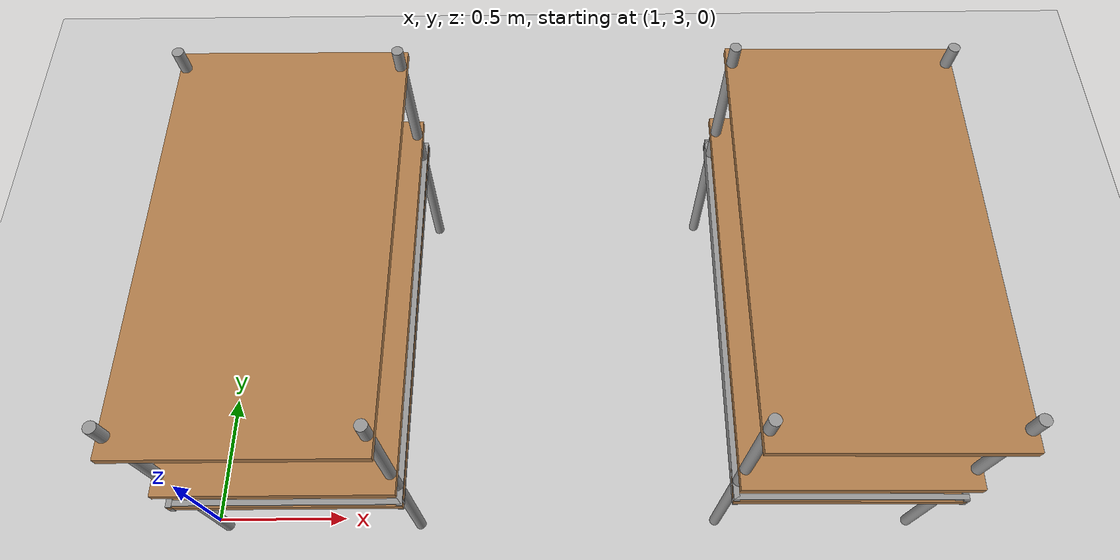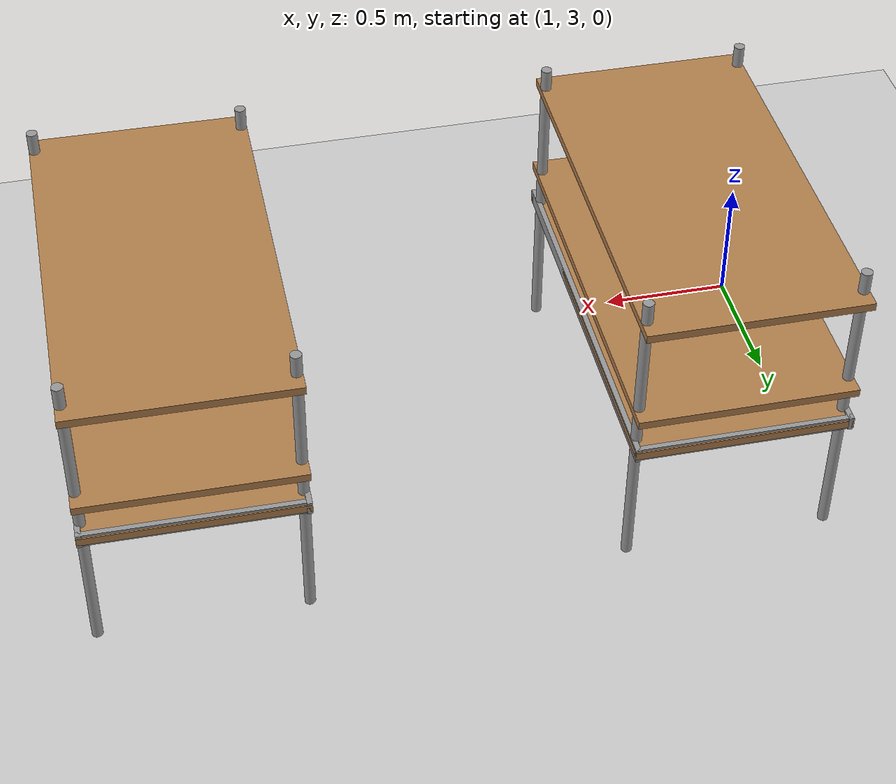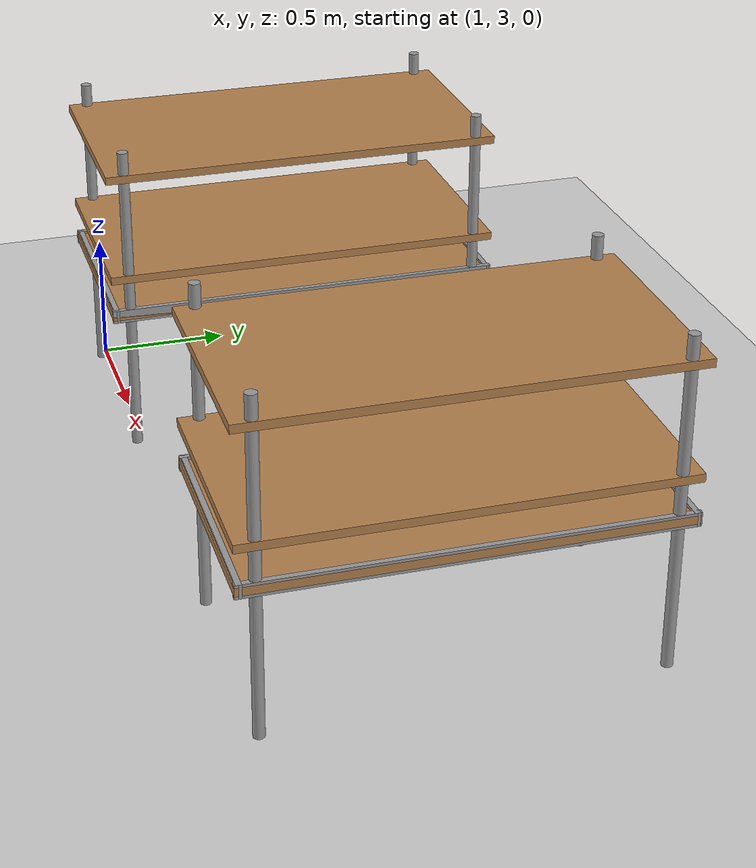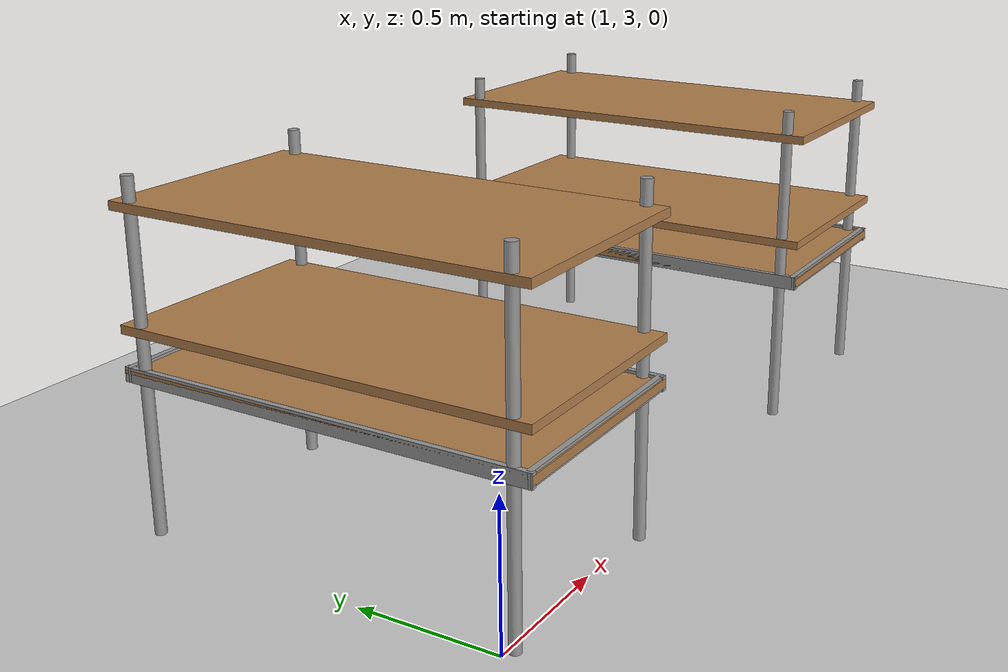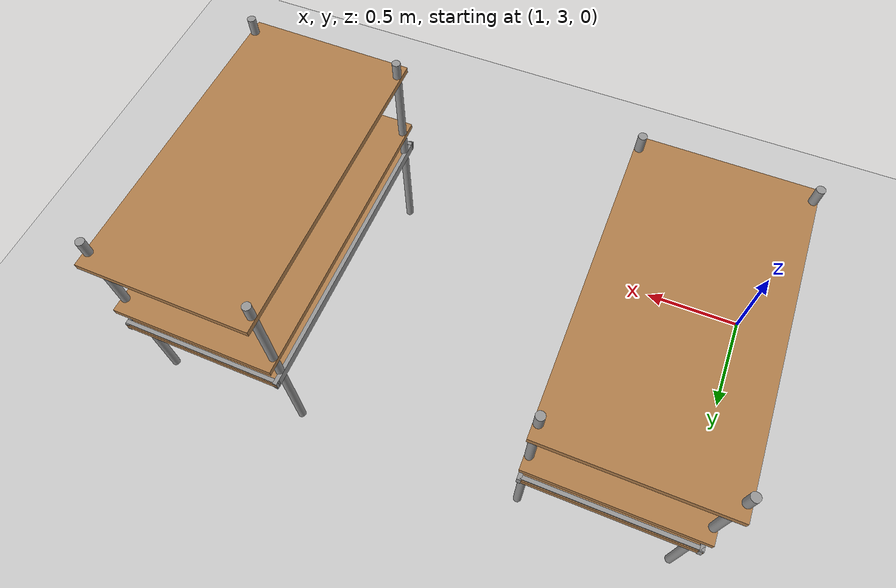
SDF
<sdf version="1.7">
 <world name="default">
  <model name="ground_plane">
   <static>1</static>
   <link name="link">
    <collision name="collision">
     <geometry><plane><normal>0 0 1</normal><size>100 100</size></plane></geometry>
     <surface><friction><ode><mu>100</mu><mu2>50</mu2></ode></friction></surface>
    </collision>
    <visual name="visual">
     <cast_shadows>0</cast_shadows>
     <geometry><plane><normal>0 0 1</normal><size>100 100</size></plane></geometry>
     <material>
      <script><uri>file://media/materials/scripts/gazebo.material</uri><name>Gazebo/Grey</name></script>
     </material>
    </visual>
   </link>
  </model>
  <model name="warehouse_pallet_clone_0_clone_2_clone_0">
   <link name="warehouse_pallet::link">
    <pose>0 0 -0 0 -0 1.57</pose>
    <inertial>
     <inertia>
      <ixx>0.0267042</ixx>
      <ixy>0</ixy>
      <ixz>0</ixz>
      <iyy>0.0937875</iyy>
      <iyz>0</iyz>
      <izz>0.120417</izz>
     </inertia>
     <mass>0.5</mass>
    </inertial>
    <visual name="holding1_visual">
     <pose>0 0.39 0.45 0 -0 0</pose>
     <geometry><box><size>1.5 0.02 0.05</size></box></geometry>
     <material>
      <script><uri>file://media/materials/scripts/gazebo.material</uri><name>Gazebo/Grey</name></script>
      <shader type="pixel"><normal_map>__default__</normal_map></shader>
      <ambient>0.3 0.3 0.3 1</ambient>
      <diffuse>0.7 0.7 0.7 1</diffuse>
      <specular>0.01 0.01 0.01 1</specular>
      <emissive>0 0 0 1</emissive>
     </material>
    </visual>
    <visual name="front_left_leg">
     <pose>0.68 0.38 0.5 0 -0 0</pose>
     <geometry><cylinder><radius>0.02</radius><length>1.2</length></cylinder></geometry>
     <material>
      <script><uri>file://media/materials/scripts/gazebo.material</uri><name>Gazebo/Grey</name></script>
      <shader type="pixel"><normal_map>__default__</normal_map></shader>
      <ambient>0.3 0.3 0.3 1</ambient>
      <diffuse>0.7 0.7 0.7 1</diffuse>
      <specular>0.01 0.01 0.01 1</specular>
      <emissive>0 0 0 1</emissive>
     </material>
    </visual>
    <visual name="front_right_leg">
     <pose>0.68 -0.38 0.5 0 -0 0</pose>
     <geometry><cylinder><radius>0.02</radius><length>1.2</length></cylinder></geometry>
     <material>
      <script><uri>file://media/materials/scripts/gazebo.material</uri><name>Gazebo/Grey</name></script>
      <shader type="pixel"><normal_map>__default__</normal_map></shader>
      <ambient>0.3 0.3 0.3 1</ambient>
      <diffuse>0.7 0.7 0.7 1</diffuse>
      <specular>0.01 0.01 0.01 1</specular>
      <emissive>0 0 0 1</emissive>
     </material>
    </visual>
    <visual name="back_right_leg">
     <pose>-0.68 -0.38 0.5 0 -0 0</pose>
     <geometry><cylinder><radius>0.02</radius><length>1.2</length></cylinder></geometry>
     <material>
      <script><uri>file://media/materials/scripts/gazebo.material</uri><name>Gazebo/Grey</name></script>
      <shader type="pixel"><normal_map>__default__</normal_map></shader>
      <ambient>0.3 0.3 0.3 1</ambient>
      <diffuse>0.7 0.7 0.7 1</diffuse>
      <specular>0.01 0.01 0.01 1</specular>
      <emissive>0 0 0 1</emissive>
     </material>
    </visual>
    <visual name="back_left_leg">
     <pose>-0.68 0.38 0.5 0 -0 0</pose>
     <geometry><cylinder><radius>0.02</radius><length>1.2</length></cylinder></geometry>
     <material>
      <script><uri>file://media/materials/scripts/gazebo.material</uri><name>Gazebo/Grey</name></script>
      <shader type="pixel"><normal_map>__default__</normal_map></shader>
      <ambient>0.3 0.3 0.3 1</ambient>
      <diffuse>0.7 0.7 0.7 1</diffuse>
      <specular>0.01 0.01 0.01 1</specular>
      <emissive>0 0 0 1</emissive>
     </material>
    </visual>
    <visual name="visual1">
     <pose>0 0 0.45 0 -0 0</pose>
     <geometry><box><size>1.5 0.8 0.03</size></box></geometry>
     <material>
      <script><uri>file://media/materials/scripts/gazebo.material</uri><name>Gazebo/Wood</name></script>
      <shader type="pixel"><normal_map>__default__</normal_map></shader>
      <ambient>1 1 1 1</ambient>
      <diffuse>1 1 1 1</diffuse>
      <specular>0.2 0.2 0.2 1</specular>
      <emissive>0 0 0 1</emissive>
     </material>
    </visual>
    <visual name="holding2_visual">
     <pose>0 -0.39 0.45 0 -0 0</pose>
     <geometry><box><size>1.5 0.02 0.05</size></box></geometry>
     <material>
      <script><uri>file://media/materials/scripts/gazebo.material</uri><name>Gazebo/Grey</name></script>
      <shader type="pixel"><normal_map>__default__</normal_map></shader>
      <ambient>0.3 0.3 0.3 1</ambient>
      <diffuse>0.7 0.7 0.7 1</diffuse>
      <specular>0.01 0.01 0.01 1</specular>
      <emissive>0 0 0 1</emissive>
     </material>
    </visual>
    <visual name="holding3_visual">
     <pose>0.735 0 0.45 0 -0 1.57</pose>
     <geometry><box><size>0.8 0.02 0.05</size></box></geometry>
     <material>
      <script><uri>file://media/materials/scripts/gazebo.material</uri><name>Gazebo/Grey</name></script>
      <shader type="pixel"><normal_map>__default__</normal_map></shader>
      <ambient>0.3 0.3 0.3 1</ambient>
      <diffuse>0.7 0.7 0.7 1</diffuse>
      <specular>0.01 0.01 0.01 1</specular>
      <emissive>0 0 0 1</emissive>
     </material>
    </visual>
    <visual name="holding4_visual">
     <pose>-0.735 0 0.45 0 -0 1.57</pose>
     <geometry><box><size>0.8 0.02 0.05</size></box></geometry>
     <material>
      <script><uri>file://media/materials/scripts/gazebo.material</uri><name>Gazebo/Grey</name></script>
      <shader type="pixel"><normal_map>__default__</normal_map></shader>
      <ambient>0.3 0.3 0.3 1</ambient>
      <diffuse>0.7 0.7 0.7 1</diffuse>
      <specular>0.01 0.01 0.01 1</specular>
      <emissive>0 0 0 1</emissive>
     </material>
    </visual>
    <visual name="visual2">
     <pose>0 0 0.6 0 -0 0</pose>
     <geometry><box><size>1.5 0.8 0.03</size></box></geometry>
     <material>
      <script><uri>file://media/materials/scripts/gazebo.material</uri><name>Gazebo/Wood</name></script>
      <shader type="pixel"><normal_map>__default__</normal_map></shader>
      <ambient>1 1 1 1</ambient>
      <diffuse>1 1 1 1</diffuse>
      <specular>0.2 0.2 0.2 1</specular>
      <emissive>0 0 0 1</emissive>
     </material>
    </visual>
    <visual name="visual3">
     <pose>0 0 1 0 -0 0</pose>
     <geometry><box><size>1.5 0.8 0.03</size></box></geometry>
     <material>
      <script><uri>file://media/materials/scripts/gazebo.material</uri><name>Gazebo/Wood</name></script>
      <shader type="pixel"><normal_map>__default__</normal_map></shader>
      <ambient>1 1 1 1</ambient>
      <diffuse>1 1 1 1</diffuse>
      <specular>0.2 0.2 0.2 1</specular>
      <emissive>0 0 0 1</emissive>
     </material>
    </visual>
    <collision name="surface1">
     <pose>0 0 0.45 0 -0 0</pose>
     <geometry><box><size>1.5 0.8 0.03</size></box></geometry>
     <surface>
      <friction>
       <ode><mu>20</mu><mu2>20</mu2><fdir1>0 0 0</fdir1><slip1>0</slip1><slip2>0</slip2></ode>
       <torsional>
        <coefficient>1</coefficient>
        <patch_radius>0</patch_radius>
        <surface_radius>0</surface_radius>
        <use_patch_radius>1</use_patch_radius>
        <ode><slip>0</slip></ode>
       </torsional>
      </friction>
      <bounce><restitution_coefficient>0</restitution_coefficient><threshold>1e+06</threshold></bounce>
      <contact>
       <collide_without_contact>0</collide_without_contact>
       <collide_without_contact_bitmask>1</collide_without_contact_bitmask>
       <collide_bitmask>1</collide_bitmask>
       <ode>
        <soft_cfm>0</soft_cfm>
        <soft_erp>0.2</soft_erp>
        <kp>1e+13</kp>
        <kd>1</kd>
        <max_vel>0.01</max_vel>
        <min_depth>0</min_depth>
       </ode>
       <bullet>
        <split_impulse>1</split_impulse>
        <split_impulse_penetration_threshold>-0.01</split_impulse_penetration_threshold>
        <soft_cfm>0</soft_cfm>
        <soft_erp>0.2</soft_erp>
        <kp>1e+13</kp>
        <kd>1</kd>
       </bullet>
      </contact>
     </surface>
    </collision>
    <collision name="holding1_collision">
     <pose>0 0.39 0.45 0 -0 0</pose>
     <geometry><box><size>1.5 0.02 0.05</size></box></geometry>
     <surface>
      <friction>
       <ode><mu>1e+09</mu><mu2>1e+09</mu2><fdir1>0 0 0</fdir1><slip1>0</slip1><slip2>0</slip2></ode>
       <torsional>
        <coefficient>1</coefficient>
        <patch_radius>0</patch_radius>
        <surface_radius>0</surface_radius>
        <use_patch_radius>1</use_patch_radius>
        <ode><slip>0</slip></ode>
       </torsional>
      </friction>
      <bounce><restitution_coefficient>0</restitution_coefficient><threshold>1e+06</threshold></bounce>
      <contact>
       <collide_without_contact>0</collide_without_contact>
       <collide_without_contact_bitmask>1</collide_without_contact_bitmask>
       <collide_bitmask>1</collide_bitmask>
       <ode>
        <soft_cfm>0</soft_cfm>
        <soft_erp>0.2</soft_erp>
        <kp>1e+13</kp>
        <kd>1</kd>
        <max_vel>0.01</max_vel>
        <min_depth>0</min_depth>
       </ode>
       <bullet>
        <split_impulse>1</split_impulse>
        <split_impulse_penetration_threshold>-0.01</split_impulse_penetration_threshold>
        <soft_cfm>0</soft_cfm>
        <soft_erp>0.2</soft_erp>
        <kp>1e+13</kp>
        <kd>1</kd>
       </bullet>
      </contact>
     </surface>
    </collision>
    <collision name="holding2_collision">
     <pose>0 -0.39 0.45 0 -0 0</pose>
     <geometry><box><size>1.5 0.02 0.05</size></box></geometry>
     <surface>
      <friction>
       <ode><mu>1e+09</mu><mu2>1e+09</mu2><fdir1>0 0 0</fdir1><slip1>0</slip1><slip2>0</slip2></ode>
       <torsional>
        <coefficient>1</coefficient>
        <patch_radius>0</patch_radius>
        <surface_radius>0</surface_radius>
        <use_patch_radius>1</use_patch_radius>
        <ode><slip>0</slip></ode>
       </torsional>
      </friction>
      <bounce><restitution_coefficient>0</restitution_coefficient><threshold>1e+06</threshold></bounce>
      <contact>
       <collide_without_contact>0</collide_without_contact>
       <collide_without_contact_bitmask>1</collide_without_contact_bitmask>
       <collide_bitmask>1</collide_bitmask>
       <ode>
        <soft_cfm>0</soft_cfm>
        <soft_erp>0.2</soft_erp>
        <kp>1e+13</kp>
        <kd>1</kd>
        <max_vel>0.01</max_vel>
        <min_depth>0</min_depth>
       </ode>
       <bullet>
        <split_impulse>1</split_impulse>
        <split_impulse_penetration_threshold>-0.01</split_impulse_penetration_threshold>
        <soft_cfm>0</soft_cfm>
        <soft_erp>0.2</soft_erp>
        <kp>1e+13</kp>
        <kd>1</kd>
       </bullet>
      </contact>
     </surface>
    </collision>
    <collision name="holding3_collision">
     <pose>0.735 0 0.45 0 -0 1.57</pose>
     <geometry><box><size>0.8 0.02 0.05</size></box></geometry>
     <surface>
      <friction>
       <ode><mu>1e+09</mu><mu2>1e+09</mu2><fdir1>0 0 0</fdir1><slip1>0</slip1><slip2>0</slip2></ode>
       <torsional>
        <coefficient>1</coefficient>
        <patch_radius>0</patch_radius>
        <surface_radius>0</surface_radius>
        <use_patch_radius>1</use_patch_radius>
        <ode><slip>0</slip></ode>
       </torsional>
      </friction>
      <bounce><restitution_coefficient>0</restitution_coefficient><threshold>1e+06</threshold></bounce>
      <contact>
       <collide_without_contact>0</collide_without_contact>
       <collide_without_contact_bitmask>1</collide_without_contact_bitmask>
       <collide_bitmask>1</collide_bitmask>
       <ode>
        <soft_cfm>0</soft_cfm>
        <soft_erp>0.2</soft_erp>
        <kp>1e+13</kp>
        <kd>1</kd>
        <max_vel>0.01</max_vel>
        <min_depth>0</min_depth>
       </ode>
       <bullet>
        <split_impulse>1</split_impulse>
        <split_impulse_penetration_threshold>-0.01</split_impulse_penetration_threshold>
        <soft_cfm>0</soft_cfm>
        <soft_erp>0.2</soft_erp>
        <kp>1e+13</kp>
        <kd>1</kd>
       </bullet>
      </contact>
     </surface>
    </collision>
    <collision name="holding4_collision">
     <pose>-0.735 0 0.45 0 -0 1.57</pose>
     <geometry><box><size>0.8 0.02 0.05</size></box></geometry>
     <surface>
      <friction>
       <ode><mu>1e+09</mu><mu2>1e+09</mu2><fdir1>0 0 0</fdir1><slip1>0</slip1><slip2>0</slip2></ode>
       <torsional>
        <coefficient>1</coefficient>
        <patch_radius>0</patch_radius>
        <surface_radius>0</surface_radius>
        <use_patch_radius>1</use_patch_radius>
        <ode><slip>0</slip></ode>
       </torsional>
      </friction>
      <bounce><restitution_coefficient>0</restitution_coefficient><threshold>1e+06</threshold></bounce>
      <contact>
       <collide_without_contact>0</collide_without_contact>
       <collide_without_contact_bitmask>1</collide_without_contact_bitmask>
       <collide_bitmask>1</collide_bitmask>
       <ode>
        <soft_cfm>0</soft_cfm>
        <soft_erp>0.2</soft_erp>
        <kp>1e+13</kp>
        <kd>1</kd>
        <max_vel>0.01</max_vel>
        <min_depth>0</min_depth>
       </ode>
       <bullet>
        <split_impulse>1</split_impulse>
        <split_impulse_penetration_threshold>-0.01</split_impulse_penetration_threshold>
        <soft_cfm>0</soft_cfm>
        <soft_erp>0.2</soft_erp>
        <kp>1e+13</kp>
        <kd>1</kd>
       </bullet>
      </contact>
     </surface>
    </collision>
    <collision name="surface3">
     <pose>0 0 1 0 -0 0</pose>
     <geometry><box><size>1.5 0.8 0.03</size></box></geometry>
     <surface>
      <friction>
       <ode><mu>2.5</mu><mu2>2.5</mu2><fdir1>0 0 0</fdir1><slip1>0</slip1><slip2>0</slip2></ode>
       <torsional>
        <coefficient>1</coefficient>
        <patch_radius>0</patch_radius>
        <surface_radius>0</surface_radius>
        <use_patch_radius>1</use_patch_radius>
        <ode><slip>0</slip></ode>
       </torsional>
      </friction>
      <bounce><restitution_coefficient>0</restitution_coefficient><threshold>1e+06</threshold></bounce>
      <contact>
       <collide_without_contact>0</collide_without_contact>
       <collide_without_contact_bitmask>1</collide_without_contact_bitmask>
       <collide_bitmask>1</collide_bitmask>
       <ode>
        <soft_cfm>0</soft_cfm>
        <soft_erp>0.2</soft_erp>
        <kp>1e+13</kp>
        <kd>1</kd>
        <max_vel>0.01</max_vel>
        <min_depth>0</min_depth>
       </ode>
       <bullet>
        <split_impulse>1</split_impulse>
        <split_impulse_penetration_threshold>-0.01</split_impulse_penetration_threshold>
        <soft_cfm>0</soft_cfm>
        <soft_erp>0.2</soft_erp>
        <kp>1e+13</kp>
        <kd>1</kd>
       </bullet>
      </contact>
     </surface>
    </collision>
    <collision name="surface2">
     <pose>0 0 0.6 0 -0 0</pose>
     <geometry><box><size>1.5 0.8 0.03</size></box></geometry>
     <surface>
      <friction>
       <ode><mu>2.5</mu><mu2>2.5</mu2><fdir1>0 0 0</fdir1><slip1>0</slip1><slip2>0</slip2></ode>
       <torsional>
        <coefficient>1</coefficient>
        <patch_radius>0</patch_radius>
        <surface_radius>0</surface_radius>
        <use_patch_radius>1</use_patch_radius>
        <ode><slip>0</slip></ode>
       </torsional>
      </friction>
      <bounce><restitution_coefficient>0</restitution_coefficient><threshold>1e+06</threshold></bounce>
      <contact>
       <collide_without_contact>0</collide_without_contact>
       <collide_without_contact_bitmask>1</collide_without_contact_bitmask>
       <collide_bitmask>1</collide_bitmask>
       <ode>
        <soft_cfm>0</soft_cfm>
        <soft_erp>0.2</soft_erp>
        <kp>1e+13</kp>
        <kd>1</kd>
        <max_vel>0.01</max_vel>
        <min_depth>0</min_depth>
       </ode>
       <bullet>
        <split_impulse>1</split_impulse>
        <split_impulse_penetration_threshold>-0.01</split_impulse_penetration_threshold>
        <soft_cfm>0</soft_cfm>
        <soft_erp>0.2</soft_erp>
        <kp>1e+13</kp>
        <kd>1</kd>
       </bullet>
      </contact>
     </surface>
    </collision>
    <collision name="front_right_leg">
     <pose>0.68 -0.38 0.5 0 -0 0</pose>
     <geometry><cylinder><radius>0.02</radius><length>1</length></cylinder></geometry>
     <surface>
      <friction>
       <ode><mu>1</mu><mu2>1.2</mu2><fdir1>0 0 0</fdir1><slip1>0</slip1><slip2>0</slip2></ode>
       <torsional>
        <coefficient>1</coefficient>
        <patch_radius>0</patch_radius>
        <surface_radius>0</surface_radius>
        <use_patch_radius>1</use_patch_radius>
        <ode><slip>0</slip></ode>
       </torsional>
      </friction>
      <bounce><restitution_coefficient>0</restitution_coefficient><threshold>1e+06</threshold></bounce>
      <contact>
       <collide_without_contact>0</collide_without_contact>
       <collide_without_contact_bitmask>1</collide_without_contact_bitmask>
       <collide_bitmask>1</collide_bitmask>
       <ode>
        <soft_cfm>0</soft_cfm>
        <soft_erp>0.2</soft_erp>
        <kp>1e+13</kp>
        <kd>1</kd>
        <max_vel>0.01</max_vel>
        <min_depth>0</min_depth>
       </ode>
       <bullet>
        <split_impulse>1</split_impulse>
        <split_impulse_penetration_threshold>-0.01</split_impulse_penetration_threshold>
        <soft_cfm>0</soft_cfm>
        <soft_erp>0.2</soft_erp>
        <kp>1e+13</kp>
        <kd>1</kd>
       </bullet>
      </contact>
     </surface>
    </collision>
    <collision name="back_right_leg">
     <pose>-0.68 -0.38 0.5 0 -0 0</pose>
     <geometry><cylinder><radius>0.02</radius><length>1.2</length></cylinder></geometry>
     <surface>
      <friction>
       <ode><mu>1</mu><mu2>1</mu2><fdir1>0 0 0</fdir1><slip1>0</slip1><slip2>0</slip2></ode>
       <torsional>
        <coefficient>1</coefficient>
        <patch_radius>0</patch_radius>
        <surface_radius>0</surface_radius>
        <use_patch_radius>1</use_patch_radius>
        <ode><slip>0</slip></ode>
       </torsional>
      </friction>
      <bounce><restitution_coefficient>0</restitution_coefficient><threshold>1e+06</threshold></bounce>
      <contact>
       <collide_without_contact>0</collide_without_contact>
       <collide_without_contact_bitmask>1</collide_without_contact_bitmask>
       <collide_bitmask>1</collide_bitmask>
       <ode>
        <soft_cfm>0</soft_cfm>
        <soft_erp>0.2</soft_erp>
        <kp>1e+13</kp>
        <kd>1</kd>
        <max_vel>0.01</max_vel>
        <min_depth>0</min_depth>
       </ode>
       <bullet>
        <split_impulse>1</split_impulse>
        <split_impulse_penetration_threshold>-0.01</split_impulse_penetration_threshold>
        <soft_cfm>0</soft_cfm>
        <soft_erp>0.2</soft_erp>
        <kp>1e+13</kp>
        <kd>1</kd>
       </bullet>
      </contact>
     </surface>
    </collision>
    <collision name="front_left_leg">
     <pose>0.68 0.38 0.5 0 -0 0</pose>
     <geometry><cylinder><radius>0.02</radius><length>1.2</length></cylinder></geometry>
     <surface>
      <friction>
       <ode><mu>1</mu><mu2>1</mu2><fdir1>0 0 0</fdir1><slip1>0</slip1><slip2>0</slip2></ode>
       <torsional>
        <coefficient>1</coefficient>
        <patch_radius>0</patch_radius>
        <surface_radius>0</surface_radius>
        <use_patch_radius>1</use_patch_radius>
        <ode><slip>0</slip></ode>
       </torsional>
      </friction>
      <bounce><restitution_coefficient>0</restitution_coefficient><threshold>1e+06</threshold></bounce>
      <contact>
       <collide_without_contact>0</collide_without_contact>
       <collide_without_contact_bitmask>1</collide_without_contact_bitmask>
       <collide_bitmask>1</collide_bitmask>
       <ode>
        <soft_cfm>0</soft_cfm>
        <soft_erp>0.2</soft_erp>
        <kp>1e+13</kp>
        <kd>1</kd>
        <max_vel>0.01</max_vel>
        <min_depth>0</min_depth>
       </ode>
       <bullet>
        <split_impulse>1</split_impulse>
        <split_impulse_penetration_threshold>-0.01</split_impulse_penetration_threshold>
        <soft_cfm>0</soft_cfm>
        <soft_erp>0.2</soft_erp>
        <kp>1e+13</kp>
        <kd>1</kd>
       </bullet>
      </contact>
     </surface>
    </collision>
    <collision name="back_left_leg">
     <pose>-0.68 0.38 0.5 0 -0 0</pose>
     <geometry><cylinder><radius>0.02</radius><length>1.2</length></cylinder></geometry>
     <surface>
      <friction>
       <ode><mu>1</mu><mu2>1</mu2><fdir1>0 0 0</fdir1><slip1>0</slip1><slip2>0</slip2></ode>
       <torsional>
        <coefficient>1</coefficient>
        <patch_radius>0</patch_radius>
        <surface_radius>0</surface_radius>
        <use_patch_radius>1</use_patch_radius>
        <ode><slip>0</slip></ode>
       </torsional>
      </friction>
      <bounce><restitution_coefficient>0</restitution_coefficient><threshold>1e+06</threshold></bounce>
      <contact>
       <collide_without_contact>0</collide_without_contact>
       <collide_without_contact_bitmask>1</collide_without_contact_bitmask>
       <collide_bitmask>1</collide_bitmask>
       <ode>
        <soft_cfm>0</soft_cfm>
        <soft_erp>0.2</soft_erp>
        <kp>1e+13</kp>
        <kd>1</kd>
        <max_vel>0.01</max_vel>
        <min_depth>0</min_depth>
       </ode>
       <bullet>
        <split_impulse>1</split_impulse>
        <split_impulse_penetration_threshold>-0.01</split_impulse_penetration_threshold>
        <soft_cfm>0</soft_cfm>
        <soft_erp>0.2</soft_erp>
        <kp>1e+13</kp>
        <kd>1</kd>
       </bullet>
      </contact>
     </surface>
    </collision>
   </link>
   <static>0</static>
   <pose>1.42096 3.65601 0.099962 -4e-06 0.00011 -0.002929</pose>
  </model>
  <model name="warehouse_pallet_clone_0_clone_2_clone_4">
   <link name="warehouse_pallet::link">
    <pose>0 0 -0 0 -0 1.57</pose>
    <inertial>
     <inertia>
      <ixx>0.0267042</ixx>
      <ixy>0</ixy>
      <ixz>0</ixz>
      <iyy>0.0937875</iyy>
      <iyz>0</iyz>
      <izz>0.120417</izz>
     </inertia>
     <mass>0.5</mass>
    </inertial>
    <visual name="holding1_visual">
     <pose>0 0.39 0.45 0 -0 0</pose>
     <geometry><box><size>1.5 0.02 0.05</size></box></geometry>
     <material>
      <script><uri>file://media/materials/scripts/gazebo.material</uri><name>Gazebo/Grey</name></script>
      <shader type="pixel"><normal_map>__default__</normal_map></shader>
      <ambient>0.3 0.3 0.3 1</ambient>
      <diffuse>0.7 0.7 0.7 1</diffuse>
      <specular>0.01 0.01 0.01 1</specular>
      <emissive>0 0 0 1</emissive>
     </material>
    </visual>
    <visual name="front_left_leg">
     <pose>0.68 0.38 0.5 0 -0 0</pose>
     <geometry><cylinder><radius>0.02</radius><length>1.2</length></cylinder></geometry>
     <material>
      <script><uri>file://media/materials/scripts/gazebo.material</uri><name>Gazebo/Grey</name></script>
      <shader type="pixel"><normal_map>__default__</normal_map></shader>
      <ambient>0.3 0.3 0.3 1</ambient>
      <diffuse>0.7 0.7 0.7 1</diffuse>
      <specular>0.01 0.01 0.01 1</specular>
      <emissive>0 0 0 1</emissive>
     </material>
    </visual>
    <visual name="front_right_leg">
     <pose>0.68 -0.38 0.5 0 -0 0</pose>
     <geometry><cylinder><radius>0.02</radius><length>1.2</length></cylinder></geometry>
     <material>
      <script><uri>file://media/materials/scripts/gazebo.material</uri><name>Gazebo/Grey</name></script>
      <shader type="pixel"><normal_map>__default__</normal_map></shader>
      <ambient>0.3 0.3 0.3 1</ambient>
      <diffuse>0.7 0.7 0.7 1</diffuse>
      <specular>0.01 0.01 0.01 1</specular>
      <emissive>0 0 0 1</emissive>
     </material>
    </visual>
    <visual name="back_right_leg">
     <pose>-0.68 -0.38 0.5 0 -0 0</pose>
     <geometry><cylinder><radius>0.02</radius><length>1.2</length></cylinder></geometry>
     <material>
      <script><uri>file://media/materials/scripts/gazebo.material</uri><name>Gazebo/Grey</name></script>
      <shader type="pixel"><normal_map>__default__</normal_map></shader>
      <ambient>0.3 0.3 0.3 1</ambient>
      <diffuse>0.7 0.7 0.7 1</diffuse>
      <specular>0.01 0.01 0.01 1</specular>
      <emissive>0 0 0 1</emissive>
     </material>
    </visual>
    <visual name="back_left_leg">
     <pose>-0.68 0.38 0.5 0 -0 0</pose>
     <geometry><cylinder><radius>0.02</radius><length>1.2</length></cylinder></geometry>
     <material>
      <script><uri>file://media/materials/scripts/gazebo.material</uri><name>Gazebo/Grey</name></script>
      <shader type="pixel"><normal_map>__default__</normal_map></shader>
      <ambient>0.3 0.3 0.3 1</ambient>
      <diffuse>0.7 0.7 0.7 1</diffuse>
      <specular>0.01 0.01 0.01 1</specular>
      <emissive>0 0 0 1</emissive>
     </material>
    </visual>
    <visual name="visual1">
     <pose>0 0 0.45 0 -0 0</pose>
     <geometry><box><size>1.5 0.8 0.03</size></box></geometry>
     <material>
      <script><uri>file://media/materials/scripts/gazebo.material</uri><name>Gazebo/Wood</name></script>
      <shader type="pixel"><normal_map>__default__</normal_map></shader>
      <ambient>1 1 1 1</ambient>
      <diffuse>1 1 1 1</diffuse>
      <specular>0.2 0.2 0.2 1</specular>
      <emissive>0 0 0 1</emissive>
     </material>
    </visual>
    <visual name="holding2_visual">
     <pose>0 -0.39 0.45 0 -0 0</pose>
     <geometry><box><size>1.5 0.02 0.05</size></box></geometry>
     <material>
      <script><uri>file://media/materials/scripts/gazebo.material</uri><name>Gazebo/Grey</name></script>
      <shader type="pixel"><normal_map>__default__</normal_map></shader>
      <ambient>0.3 0.3 0.3 1</ambient>
      <diffuse>0.7 0.7 0.7 1</diffuse>
      <specular>0.01 0.01 0.01 1</specular>
      <emissive>0 0 0 1</emissive>
     </material>
    </visual>
    <visual name="holding3_visual">
     <pose>0.735 0 0.45 0 -0 1.57</pose>
     <geometry><box><size>0.8 0.02 0.05</size></box></geometry>
     <material>
      <script><uri>file://media/materials/scripts/gazebo.material</uri><name>Gazebo/Grey</name></script>
      <shader type="pixel"><normal_map>__default__</normal_map></shader>
      <ambient>0.3 0.3 0.3 1</ambient>
      <diffuse>0.7 0.7 0.7 1</diffuse>
      <specular>0.01 0.01 0.01 1</specular>
      <emissive>0 0 0 1</emissive>
     </material>
    </visual>
    <visual name="holding4_visual">
     <pose>-0.735 0 0.45 0 -0 1.57</pose>
     <geometry><box><size>0.8 0.02 0.05</size></box></geometry>
     <material>
      <script><uri>file://media/materials/scripts/gazebo.material</uri><name>Gazebo/Grey</name></script>
      <shader type="pixel"><normal_map>__default__</normal_map></shader>
      <ambient>0.3 0.3 0.3 1</ambient>
      <diffuse>0.7 0.7 0.7 1</diffuse>
      <specular>0.01 0.01 0.01 1</specular>
      <emissive>0 0 0 1</emissive>
     </material>
    </visual>
    <visual name="visual2">
     <pose>0 0 0.6 0 -0 0</pose>
     <geometry><box><size>1.5 0.8 0.03</size></box></geometry>
     <material>
      <script><uri>file://media/materials/scripts/gazebo.material</uri><name>Gazebo/Wood</name></script>
      <shader type="pixel"><normal_map>__default__</normal_map></shader>
      <ambient>1 1 1 1</ambient>
      <diffuse>1 1 1 1</diffuse>
      <specular>0.2 0.2 0.2 1</specular>
      <emissive>0 0 0 1</emissive>
     </material>
    </visual>
    <visual name="visual3">
     <pose>0 0 1 0 -0 0</pose>
     <geometry><box><size>1.5 0.8 0.03</size></box></geometry>
     <material>
      <script><uri>file://media/materials/scripts/gazebo.material</uri><name>Gazebo/Wood</name></script>
      <shader type="pixel"><normal_map>__default__</normal_map></shader>
      <ambient>1 1 1 1</ambient>
      <diffuse>1 1 1 1</diffuse>
      <specular>0.2 0.2 0.2 1</specular>
      <emissive>0 0 0 1</emissive>
     </material>
    </visual>
    <collision name="surface1">
     <pose>0 0 0.45 0 -0 0</pose>
     <geometry><box><size>1.5 0.8 0.03</size></box></geometry>
     <surface>
      <friction>
       <ode><mu>20</mu><mu2>20</mu2><fdir1>0 0 0</fdir1><slip1>0</slip1><slip2>0</slip2></ode>
       <torsional>
        <coefficient>1</coefficient>
        <patch_radius>0</patch_radius>
        <surface_radius>0</surface_radius>
        <use_patch_radius>1</use_patch_radius>
        <ode><slip>0</slip></ode>
       </torsional>
      </friction>
      <bounce><restitution_coefficient>0</restitution_coefficient><threshold>1e+06</threshold></bounce>
      <contact>
       <collide_without_contact>0</collide_without_contact>
       <collide_without_contact_bitmask>1</collide_without_contact_bitmask>
       <collide_bitmask>1</collide_bitmask>
       <ode>
        <soft_cfm>0</soft_cfm>
        <soft_erp>0.2</soft_erp>
        <kp>1e+13</kp>
        <kd>1</kd>
        <max_vel>0.01</max_vel>
        <min_depth>0</min_depth>
       </ode>
       <bullet>
        <split_impulse>1</split_impulse>
        <split_impulse_penetration_threshold>-0.01</split_impulse_penetration_threshold>
        <soft_cfm>0</soft_cfm>
        <soft_erp>0.2</soft_erp>
        <kp>1e+13</kp>
        <kd>1</kd>
       </bullet>
      </contact>
     </surface>
    </collision>
    <collision name="holding1_collision">
     <pose>0 0.39 0.45 0 -0 0</pose>
     <geometry><box><size>1.5 0.02 0.05</size></box></geometry>
     <surface>
      <friction>
       <ode><mu>1e+09</mu><mu2>1e+09</mu2><fdir1>0 0 0</fdir1><slip1>0</slip1><slip2>0</slip2></ode>
       <torsional>
        <coefficient>1</coefficient>
        <patch_radius>0</patch_radius>
        <surface_radius>0</surface_radius>
        <use_patch_radius>1</use_patch_radius>
        <ode><slip>0</slip></ode>
       </torsional>
      </friction>
      <bounce><restitution_coefficient>0</restitution_coefficient><threshold>1e+06</threshold></bounce>
      <contact>
       <collide_without_contact>0</collide_without_contact>
       <collide_without_contact_bitmask>1</collide_without_contact_bitmask>
       <collide_bitmask>1</collide_bitmask>
       <ode>
        <soft_cfm>0</soft_cfm>
        <soft_erp>0.2</soft_erp>
        <kp>1e+13</kp>
        <kd>1</kd>
        <max_vel>0.01</max_vel>
        <min_depth>0</min_depth>
       </ode>
       <bullet>
        <split_impulse>1</split_impulse>
        <split_impulse_penetration_threshold>-0.01</split_impulse_penetration_threshold>
        <soft_cfm>0</soft_cfm>
        <soft_erp>0.2</soft_erp>
        <kp>1e+13</kp>
        <kd>1</kd>
       </bullet>
      </contact>
     </surface>
    </collision>
    <collision name="holding2_collision">
     <pose>0 -0.39 0.45 0 -0 0</pose>
     <geometry><box><size>1.5 0.02 0.05</size></box></geometry>
     <surface>
      <friction>
       <ode><mu>1e+09</mu><mu2>1e+09</mu2><fdir1>0 0 0</fdir1><slip1>0</slip1><slip2>0</slip2></ode>
       <torsional>
        <coefficient>1</coefficient>
        <patch_radius>0</patch_radius>
        <surface_radius>0</surface_radius>
        <use_patch_radius>1</use_patch_radius>
        <ode><slip>0</slip></ode>
       </torsional>
      </friction>
      <bounce><restitution_coefficient>0</restitution_coefficient><threshold>1e+06</threshold></bounce>
      <contact>
       <collide_without_contact>0</collide_without_contact>
       <collide_without_contact_bitmask>1</collide_without_contact_bitmask>
       <collide_bitmask>1</collide_bitmask>
       <ode>
        <soft_cfm>0</soft_cfm>
        <soft_erp>0.2</soft_erp>
        <kp>1e+13</kp>
        <kd>1</kd>
        <max_vel>0.01</max_vel>
        <min_depth>0</min_depth>
       </ode>
       <bullet>
        <split_impulse>1</split_impulse>
        <split_impulse_penetration_threshold>-0.01</split_impulse_penetration_threshold>
        <soft_cfm>0</soft_cfm>
        <soft_erp>0.2</soft_erp>
        <kp>1e+13</kp>
        <kd>1</kd>
       </bullet>
      </contact>
     </surface>
    </collision>
    <collision name="holding3_collision">
     <pose>0.735 0 0.45 0 -0 1.57</pose>
     <geometry><box><size>0.8 0.02 0.05</size></box></geometry>
     <surface>
      <friction>
       <ode><mu>1e+09</mu><mu2>1e+09</mu2><fdir1>0 0 0</fdir1><slip1>0</slip1><slip2>0</slip2></ode>
       <torsional>
        <coefficient>1</coefficient>
        <patch_radius>0</patch_radius>
        <surface_radius>0</surface_radius>
        <use_patch_radius>1</use_patch_radius>
        <ode><slip>0</slip></ode>
       </torsional>
      </friction>
      <bounce><restitution_coefficient>0</restitution_coefficient><threshold>1e+06</threshold></bounce>
      <contact>
       <collide_without_contact>0</collide_without_contact>
       <collide_without_contact_bitmask>1</collide_without_contact_bitmask>
       <collide_bitmask>1</collide_bitmask>
       <ode>
        <soft_cfm>0</soft_cfm>
        <soft_erp>0.2</soft_erp>
        <kp>1e+13</kp>
        <kd>1</kd>
        <max_vel>0.01</max_vel>
        <min_depth>0</min_depth>
       </ode>
       <bullet>
        <split_impulse>1</split_impulse>
        <split_impulse_penetration_threshold>-0.01</split_impulse_penetration_threshold>
        <soft_cfm>0</soft_cfm>
        <soft_erp>0.2</soft_erp>
        <kp>1e+13</kp>
        <kd>1</kd>
       </bullet>
      </contact>
     </surface>
    </collision>
    <collision name="holding4_collision">
     <pose>-0.735 0 0.45 0 -0 1.57</pose>
     <geometry><box><size>0.8 0.02 0.05</size></box></geometry>
     <surface>
      <friction>
       <ode><mu>1e+09</mu><mu2>1e+09</mu2><fdir1>0 0 0</fdir1><slip1>0</slip1><slip2>0</slip2></ode>
       <torsional>
        <coefficient>1</coefficient>
        <patch_radius>0</patch_radius>
        <surface_radius>0</surface_radius>
        <use_patch_radius>1</use_patch_radius>
        <ode><slip>0</slip></ode>
       </torsional>
      </friction>
      <bounce><restitution_coefficient>0</restitution_coefficient><threshold>1e+06</threshold></bounce>
      <contact>
       <collide_without_contact>0</collide_without_contact>
       <collide_without_contact_bitmask>1</collide_without_contact_bitmask>
       <collide_bitmask>1</collide_bitmask>
       <ode>
        <soft_cfm>0</soft_cfm>
        <soft_erp>0.2</soft_erp>
        <kp>1e+13</kp>
        <kd>1</kd>
        <max_vel>0.01</max_vel>
        <min_depth>0</min_depth>
       </ode>
       <bullet>
        <split_impulse>1</split_impulse>
        <split_impulse_penetration_threshold>-0.01</split_impulse_penetration_threshold>
        <soft_cfm>0</soft_cfm>
        <soft_erp>0.2</soft_erp>
        <kp>1e+13</kp>
        <kd>1</kd>
       </bullet>
      </contact>
     </surface>
    </collision>
    <collision name="surface3">
     <pose>0 0 1 0 -0 0</pose>
     <geometry><box><size>1.5 0.8 0.03</size></box></geometry>
     <surface>
      <friction>
       <ode><mu>2.5</mu><mu2>2.5</mu2><fdir1>0 0 0</fdir1><slip1>0</slip1><slip2>0</slip2></ode>
       <torsional>
        <coefficient>1</coefficient>
        <patch_radius>0</patch_radius>
        <surface_radius>0</surface_radius>
        <use_patch_radius>1</use_patch_radius>
        <ode><slip>0</slip></ode>
       </torsional>
      </friction>
      <bounce><restitution_coefficient>0</restitution_coefficient><threshold>1e+06</threshold></bounce>
      <contact>
       <collide_without_contact>0</collide_without_contact>
       <collide_without_contact_bitmask>1</collide_without_contact_bitmask>
       <collide_bitmask>1</collide_bitmask>
       <ode>
        <soft_cfm>0</soft_cfm>
        <soft_erp>0.2</soft_erp>
        <kp>1e+13</kp>
        <kd>1</kd>
        <max_vel>0.01</max_vel>
        <min_depth>0</min_depth>
       </ode>
       <bullet>
        <split_impulse>1</split_impulse>
        <split_impulse_penetration_threshold>-0.01</split_impulse_penetration_threshold>
        <soft_cfm>0</soft_cfm>
        <soft_erp>0.2</soft_erp>
        <kp>1e+13</kp>
        <kd>1</kd>
       </bullet>
      </contact>
     </surface>
    </collision>
    <collision name="surface2">
     <pose>0 0 0.6 0 -0 0</pose>
     <geometry><box><size>1.5 0.8 0.03</size></box></geometry>
     <surface>
      <friction>
       <ode><mu>2.5</mu><mu2>2.5</mu2><fdir1>0 0 0</fdir1><slip1>0</slip1><slip2>0</slip2></ode>
       <torsional>
        <coefficient>1</coefficient>
        <patch_radius>0</patch_radius>
        <surface_radius>0</surface_radius>
        <use_patch_radius>1</use_patch_radius>
        <ode><slip>0</slip></ode>
       </torsional>
      </friction>
      <bounce><restitution_coefficient>0</restitution_coefficient><threshold>1e+06</threshold></bounce>
      <contact>
       <collide_without_contact>0</collide_without_contact>
       <collide_without_contact_bitmask>1</collide_without_contact_bitmask>
       <collide_bitmask>1</collide_bitmask>
       <ode>
        <soft_cfm>0</soft_cfm>
        <soft_erp>0.2</soft_erp>
        <kp>1e+13</kp>
        <kd>1</kd>
        <max_vel>0.01</max_vel>
        <min_depth>0</min_depth>
       </ode>
       <bullet>
        <split_impulse>1</split_impulse>
        <split_impulse_penetration_threshold>-0.01</split_impulse_penetration_threshold>
        <soft_cfm>0</soft_cfm>
        <soft_erp>0.2</soft_erp>
        <kp>1e+13</kp>
        <kd>1</kd>
       </bullet>
      </contact>
     </surface>
    </collision>
    <collision name="front_right_leg">
     <pose>0.68 -0.38 0.5 0 -0 0</pose>
     <geometry><cylinder><radius>0.02</radius><length>1</length></cylinder></geometry>
     <surface>
      <friction>
       <ode><mu>1</mu><mu2>1.2</mu2><fdir1>0 0 0</fdir1><slip1>0</slip1><slip2>0</slip2></ode>
       <torsional>
        <coefficient>1</coefficient>
        <patch_radius>0</patch_radius>
        <surface_radius>0</surface_radius>
        <use_patch_radius>1</use_patch_radius>
        <ode><slip>0</slip></ode>
       </torsional>
      </friction>
      <bounce><restitution_coefficient>0</restitution_coefficient><threshold>1e+06</threshold></bounce>
      <contact>
       <collide_without_contact>0</collide_without_contact>
       <collide_without_contact_bitmask>1</collide_without_contact_bitmask>
       <collide_bitmask>1</collide_bitmask>
       <ode>
        <soft_cfm>0</soft_cfm>
        <soft_erp>0.2</soft_erp>
        <kp>1e+13</kp>
        <kd>1</kd>
        <max_vel>0.01</max_vel>
        <min_depth>0</min_depth>
       </ode>
       <bullet>
        <split_impulse>1</split_impulse>
        <split_impulse_penetration_threshold>-0.01</split_impulse_penetration_threshold>
        <soft_cfm>0</soft_cfm>
        <soft_erp>0.2</soft_erp>
        <kp>1e+13</kp>
        <kd>1</kd>
       </bullet>
      </contact>
     </surface>
    </collision>
    <collision name="back_right_leg">
     <pose>-0.68 -0.38 0.5 0 -0 0</pose>
     <geometry><cylinder><radius>0.02</radius><length>1.2</length></cylinder></geometry>
     <surface>
      <friction>
       <ode><mu>1</mu><mu2>1</mu2><fdir1>0 0 0</fdir1><slip1>0</slip1><slip2>0</slip2></ode>
       <torsional>
        <coefficient>1</coefficient>
        <patch_radius>0</patch_radius>
        <surface_radius>0</surface_radius>
        <use_patch_radius>1</use_patch_radius>
        <ode><slip>0</slip></ode>
       </torsional>
      </friction>
      <bounce><restitution_coefficient>0</restitution_coefficient><threshold>1e+06</threshold></bounce>
      <contact>
       <collide_without_contact>0</collide_without_contact>
       <collide_without_contact_bitmask>1</collide_without_contact_bitmask>
       <collide_bitmask>1</collide_bitmask>
       <ode>
        <soft_cfm>0</soft_cfm>
        <soft_erp>0.2</soft_erp>
        <kp>1e+13</kp>
        <kd>1</kd>
        <max_vel>0.01</max_vel>
        <min_depth>0</min_depth>
       </ode>
       <bullet>
        <split_impulse>1</split_impulse>
        <split_impulse_penetration_threshold>-0.01</split_impulse_penetration_threshold>
        <soft_cfm>0</soft_cfm>
        <soft_erp>0.2</soft_erp>
        <kp>1e+13</kp>
        <kd>1</kd>
       </bullet>
      </contact>
     </surface>
    </collision>
    <collision name="front_left_leg">
     <pose>0.68 0.38 0.5 0 -0 0</pose>
     <geometry><cylinder><radius>0.02</radius><length>1.2</length></cylinder></geometry>
     <surface>
      <friction>
       <ode><mu>1</mu><mu2>1</mu2><fdir1>0 0 0</fdir1><slip1>0</slip1><slip2>0</slip2></ode>
       <torsional>
        <coefficient>1</coefficient>
        <patch_radius>0</patch_radius>
        <surface_radius>0</surface_radius>
        <use_patch_radius>1</use_patch_radius>
        <ode><slip>0</slip></ode>
       </torsional>
      </friction>
      <bounce><restitution_coefficient>0</restitution_coefficient><threshold>1e+06</threshold></bounce>
      <contact>
       <collide_without_contact>0</collide_without_contact>
       <collide_without_contact_bitmask>1</collide_without_contact_bitmask>
       <collide_bitmask>1</collide_bitmask>
       <ode>
        <soft_cfm>0</soft_cfm>
        <soft_erp>0.2</soft_erp>
        <kp>1e+13</kp>
        <kd>1</kd>
        <max_vel>0.01</max_vel>
        <min_depth>0</min_depth>
       </ode>
       <bullet>
        <split_impulse>1</split_impulse>
        <split_impulse_penetration_threshold>-0.01</split_impulse_penetration_threshold>
        <soft_cfm>0</soft_cfm>
        <soft_erp>0.2</soft_erp>
        <kp>1e+13</kp>
        <kd>1</kd>
       </bullet>
      </contact>
     </surface>
    </collision>
    <collision name="back_left_leg">
     <pose>-0.68 0.38 0.5 0 -0 0</pose>
     <geometry><cylinder><radius>0.02</radius><length>1.2</length></cylinder></geometry>
     <surface>
      <friction>
       <ode><mu>1</mu><mu2>1</mu2><fdir1>0 0 0</fdir1><slip1>0</slip1><slip2>0</slip2></ode>
       <torsional>
        <coefficient>1</coefficient>
        <patch_radius>0</patch_radius>
        <surface_radius>0</surface_radius>
        <use_patch_radius>1</use_patch_radius>
        <ode><slip>0</slip></ode>
       </torsional>
      </friction>
      <bounce><restitution_coefficient>0</restitution_coefficient><threshold>1e+06</threshold></bounce>
      <contact>
       <collide_without_contact>0</collide_without_contact>
       <collide_without_contact_bitmask>1</collide_without_contact_bitmask>
       <collide_bitmask>1</collide_bitmask>
       <ode>
        <soft_cfm>0</soft_cfm>
        <soft_erp>0.2</soft_erp>
        <kp>1e+13</kp>
        <kd>1</kd>
        <max_vel>0.01</max_vel>
        <min_depth>0</min_depth>
       </ode>
       <bullet>
        <split_impulse>1</split_impulse>
        <split_impulse_penetration_threshold>-0.01</split_impulse_penetration_threshold>
        <soft_cfm>0</soft_cfm>
        <soft_erp>0.2</soft_erp>
        <kp>1e+13</kp>
        <kd>1</kd>
       </bullet>
      </contact>
     </surface>
    </collision>
   </link>
   <static>0</static>
   <pose>3.35213 3.65223 0.099966 -4.4e-05 0.000176 -0.011442</pose>
  </model>
 </world>
</sdf>
